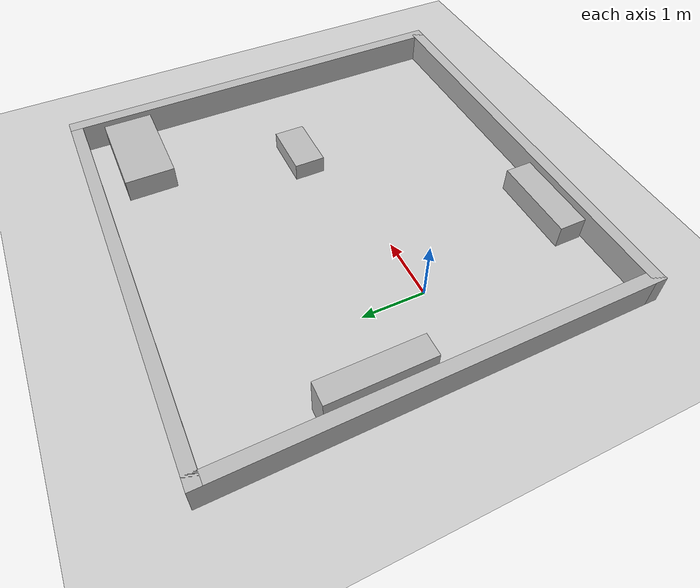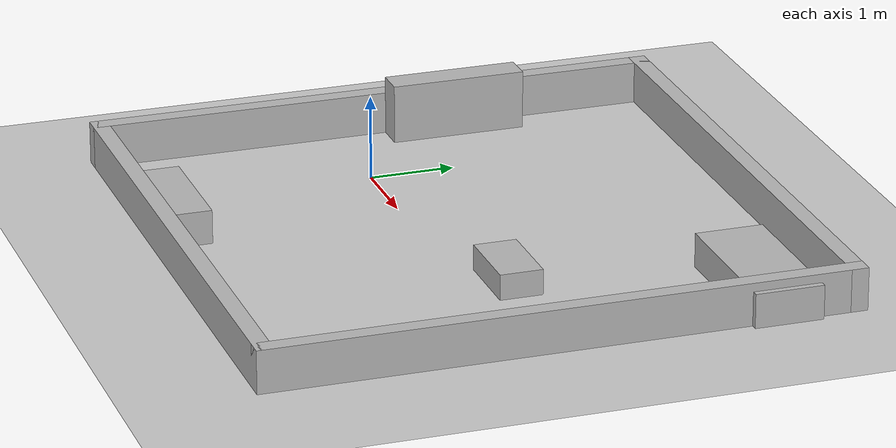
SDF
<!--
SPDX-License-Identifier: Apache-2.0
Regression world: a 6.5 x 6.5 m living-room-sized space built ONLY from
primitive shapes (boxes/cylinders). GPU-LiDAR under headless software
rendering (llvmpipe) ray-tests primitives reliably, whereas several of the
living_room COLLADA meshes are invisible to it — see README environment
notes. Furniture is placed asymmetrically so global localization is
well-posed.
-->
<?xml version="1.0" ?>
<sdf version="1.8">
  <world name="default">
    <physics type="ode">
      <real_time_update_rate>200</real_time_update_rate>
      <max_step_size>0.005</max_step_size>
      <real_time_factor>1</real_time_factor>
    </physics>
    <plugin filename="gz-sim-physics-system" name="gz::sim::systems::Physics"/>
    <plugin filename="gz-sim-user-commands-system" name="gz::sim::systems::UserCommands"/>
    <plugin filename="gz-sim-scene-broadcaster-system" name="gz::sim::systems::SceneBroadcaster"/>
    <plugin filename="gz-sim-sensors-system" name="gz::sim::systems::Sensors">
      <render_engine>ogre2</render_engine>
    </plugin>
    <plugin filename="gz-sim-contact-system" name="gz::sim::systems::Contact"/>
    <plugin filename="gz-sim-imu-system" name="gz::sim::systems::Imu"/>

    <light type="directional" name="sun">
      <cast_shadows>false</cast_shadows>
      <pose>0 0 10 0 0 0</pose>
      <diffuse>0.9 0.9 0.9 1</diffuse>
      <direction>-0.5 0.1 -0.9</direction>
    </light>

    <model name="ground_plane">
      <static>true</static>
      <link name="link">
        <collision name="collision">
          <geometry><plane><normal>0 0 1</normal><size>20 20</size></plane></geometry>
        </collision>
        <visual name="visual">
          <geometry><plane><normal>0 0 1</normal><size>20 20</size></plane></geometry>
        </visual>
      </link>
    </model>

    <!-- room shell: interior 6.5 x 6.5 m, centered on (1.925, 0.495) to keep
         the same map origin conventions as the original living_room map -->
    <model name="wall_north">
      <static>true</static>
      <pose>1.925 3.845 0.25 0 0 0</pose>
      <link name="link">
        <collision name="c"><geometry><box><size>6.9 0.2 0.5</size></box></geometry></collision>
        <visual name="v"><geometry><box><size>6.9 0.2 0.5</size></box></geometry></visual>
      </link>
    </model>
    <model name="wall_south">
      <static>true</static>
      <pose>1.925 -2.855 0.25 0 0 0</pose>
      <link name="link">
        <collision name="c"><geometry><box><size>6.9 0.2 0.5</size></box></geometry></collision>
        <visual name="v"><geometry><box><size>6.9 0.2 0.5</size></box></geometry></visual>
      </link>
    </model>
    <model name="wall_east">
      <static>true</static>
      <pose>5.275 0.495 0.25 0 0 1.5708</pose>
      <link name="link">
        <collision name="c"><geometry><box><size>6.9 0.2 0.5</size></box></geometry></collision>
        <visual name="v"><geometry><box><size>6.9 0.2 0.5</size></box></geometry></visual>
      </link>
    </model>
    <model name="wall_west">
      <static>true</static>
      <pose>-1.425 0.495 0.25 0 0 1.5708</pose>
      <link name="link">
        <collision name="c"><geometry><box><size>6.9 0.2 0.5</size></box></geometry></collision>
        <visual name="v"><geometry><box><size>6.9 0.2 0.5</size></box></geometry></visual>
      </link>
    </model>

    <!-- asymmetric furniture (all primitives) -->
    <model name="sofa">
      <static>true</static>
      <pose>4.55 3.0 0.2 0 0 0</pose>
      <link name="link">
        <collision name="c"><geometry><box><size>1.8 0.8 0.4</size></box></geometry></collision>
        <visual name="v"><geometry><box><size>1.8 0.8 0.4</size></box></geometry></visual>
      </link>
    </model>
    <model name="coffee_table">
      <static>true</static>
      <pose>3.4 0.5 0.15 0 0 0.0</pose>
      <link name="link">
        <collision name="c"><geometry><box><size>0.9 0.5 0.3</size></box></geometry></collision>
        <visual name="v"><geometry><box><size>0.9 0.5 0.3</size></box></geometry></visual>
      </link>
    </model>
    <model name="bookshelf">
      <static>true</static>
      <pose>-1.15 1.4 0.35 0 0 0</pose>
      <link name="link">
        <collision name="c"><geometry><box><size>0.35 1.6 0.7</size></box></geometry></collision>
        <visual name="v"><geometry><box><size>0.35 1.6 0.7</size></box></geometry></visual>
      </link>
    </model>
    <model name="tv_stand">
      <static>true</static>
      <pose>0.6 -2.5 0.2 0 0 0</pose>
      <link name="link">
        <collision name="c"><geometry><box><size>1.4 0.45 0.4</size></box></geometry></collision>
        <visual name="v"><geometry><box><size>1.4 0.45 0.4</size></box></geometry></visual>
      </link>
    </model>
  </world>
</sdf>
